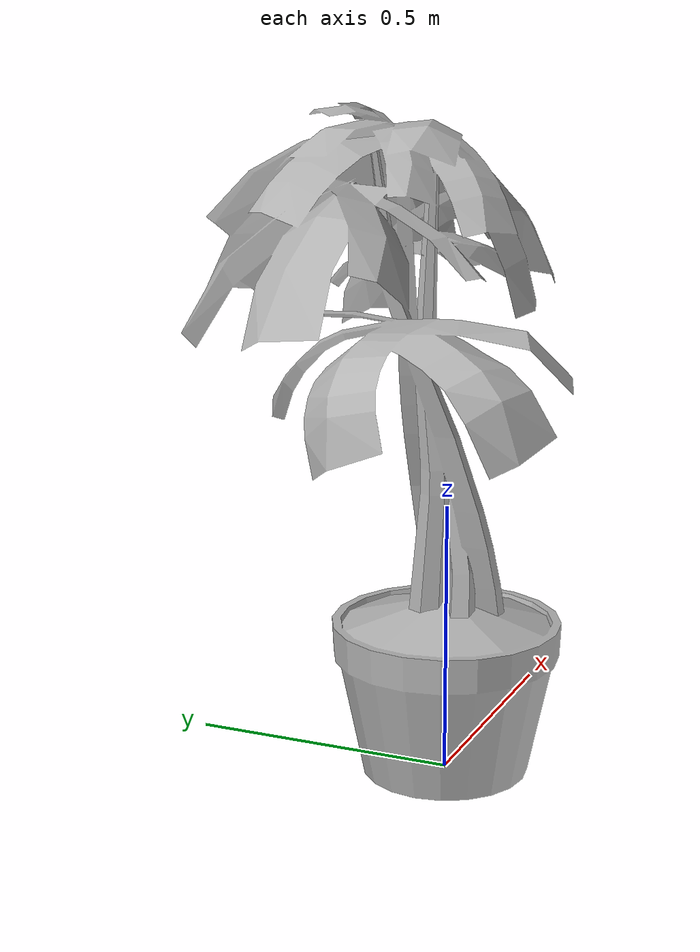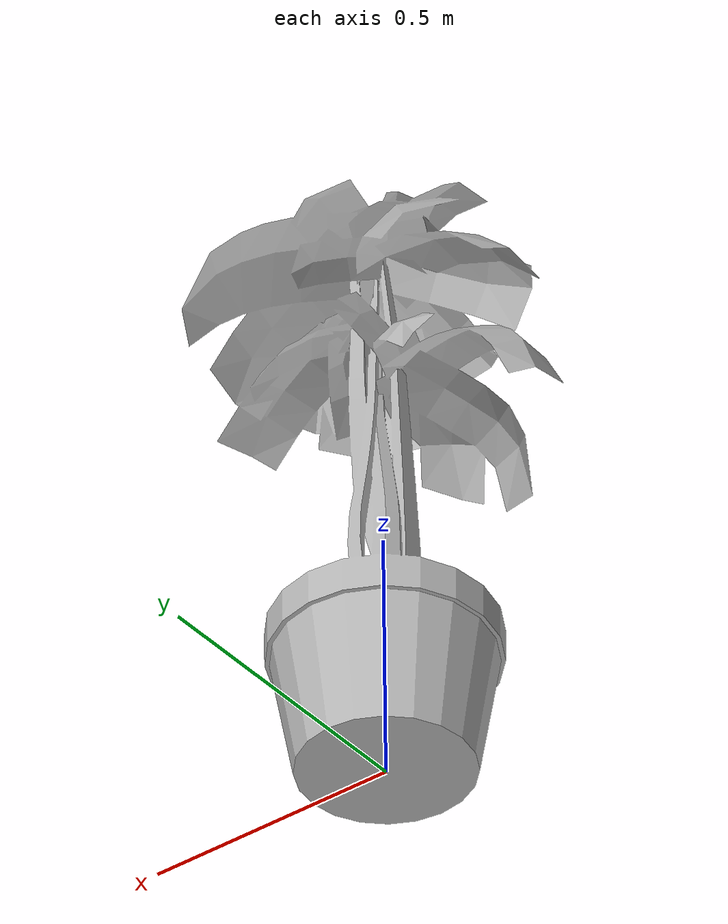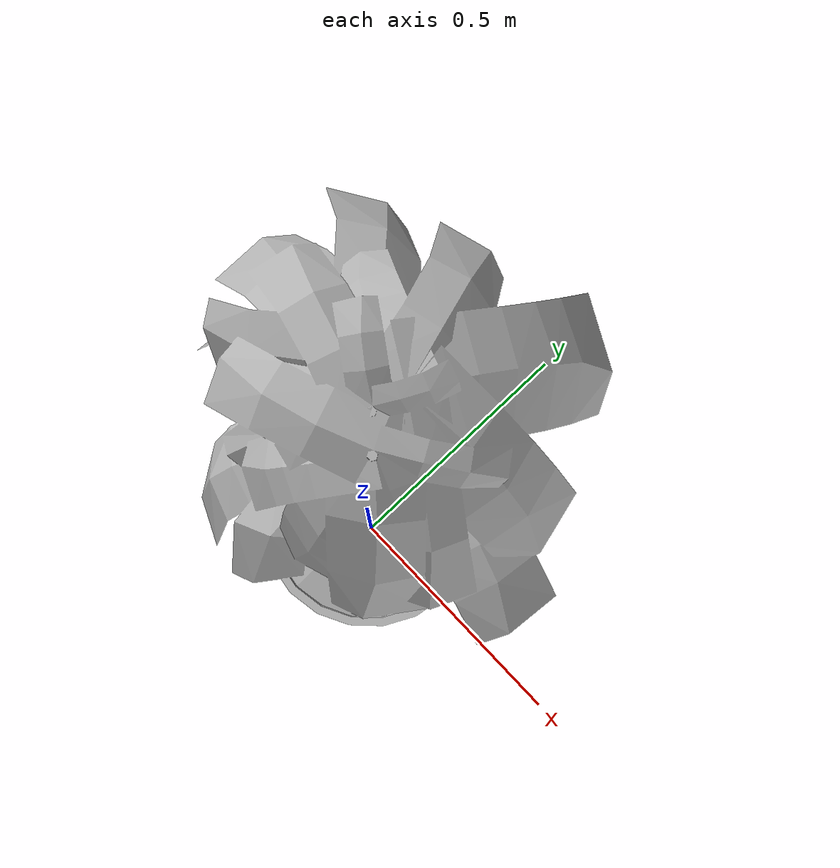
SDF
<?xml version='1.0' ?>
<sdf version='1.6'>
  <model name='big_plant'>
    <static>false</static>
    <link name='link'>
      <collision name='collision'>
        <geometry>
          <mesh>
            <uri>model://volta_simulation/models/big_plant/meshes/big_plant.dae</uri>
          </mesh>
        </geometry>
        <surface>
          <friction>
            <ode>
              <mu>100</mu>
              <mu2>50</mu2>
            </ode>
          </friction>
        </surface>
      </collision>
      <visual name='visual'>
        <geometry>
          <mesh>
            <uri>model://volta_simulation/models/big_plant/meshes/big_plant.dae</uri>
          </mesh>
        </geometry>
      </visual>
      <inertial>
        <pose>0 0 0.40 0 0 0</pose>
        <mass>8</mass>
        <inertia>
          <ixx>0.62 </ixx>
          <iyy>0.62 </iyy>
          <izz>0.1</izz>
          <ixy>0</ixy>
          <ixz>0 </ixz>
          <iyz>0</iyz>
        </inertia>
      </inertial>
    </link>
  </model>
</sdf>
